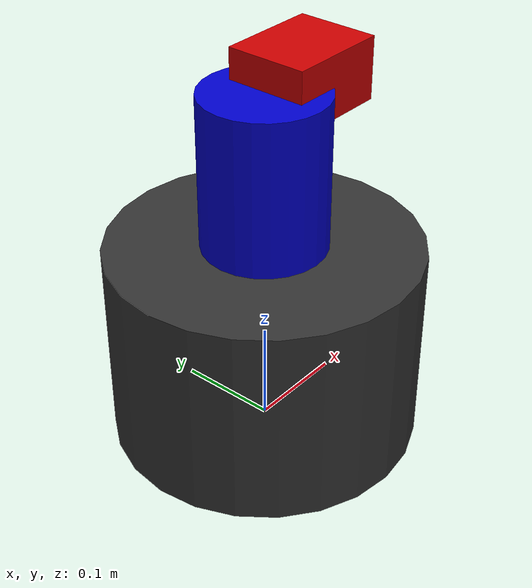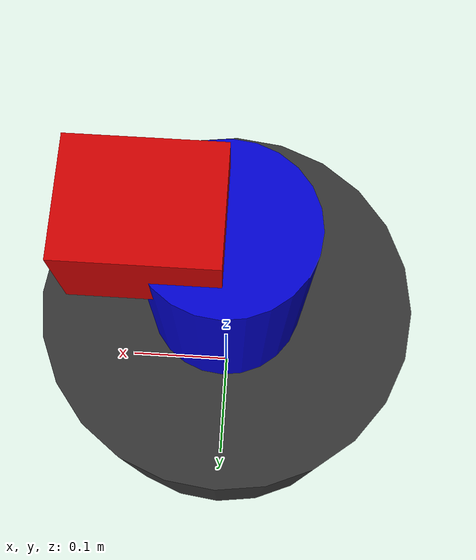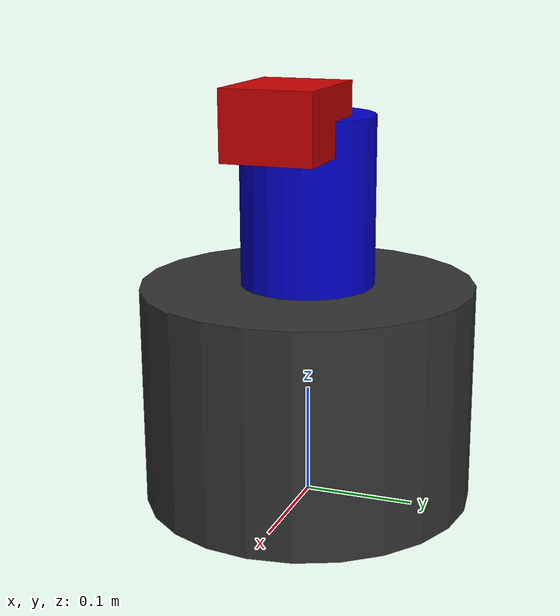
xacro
<?xml version="1.0"?>
<robot xmlns:xacro="http://www.ros.org/wiki/xacro" name="gimbal_taret">

  <xacro:macro name="cylinder_inertia" params="m r h xyz rpy">
    <inertial>
      <origin xyz="${xyz}" rpy="${rpy}"/>
      <mass value="${m}"/>
      <inertia ixx="${(m/12) * (3*r*r + h*h)}" ixy="0" ixz="0"
               iyy="${(m/12) * (3*r*r + h*h)}" iyz="0"
               izz="${(m/2) * (r*r)}"/>
    </inertial>
  </xacro:macro>

  <xacro:macro name="box_inertia" params="m x y z xyz rpy">
    <inertial>
      <origin xyz="${xyz}" rpy="${rpy}"/>
      <mass value="${m}"/>
      <inertia ixx="${(m/12) * (y*y + z*z)}" ixy="0" ixz="0"
               iyy="${(m/12) * (x*x + z*z)}" iyz="0"
               izz="${(m/12) * (x*x + y*y)}"/>
    </inertial>
  </xacro:macro>

  <link name="world"/>
  <joint name="world_joint" type="fixed">
    <parent link="world"/>
    <child link="base_link"/>
    <origin xyz="0 0 0" rpy="0 0 0"/>
  </joint>

  <link name="base_link">
    <visual>
      <origin xyz="0 0 0.1" rpy="0 0 0"/>
      <geometry>
        <cylinder length="0.2" radius="0.15"/>
      </geometry>
      <material name="dark_gray">
        <color rgba="0.2 0.2 0.2 1.0"/>
      </material>
    </visual>
    <collision>
      <origin xyz="0 0 0.1" rpy="0 0 0"/>
      <geometry>
        <cylinder length="0.2" radius="0.15"/>
      </geometry>
    </collision>
    <xacro:cylinder_inertia m="5.0" r="0.15" h="0.2" xyz="0 0 0.1" rpy="0 0 0"/>
  </link>

  <joint name="yaw_joint" type="continuous">
    <parent link="base_link"/>
    <child link="yaw_link"/>
    <origin xyz="0 0 0.2" rpy="0 0 0"/>
    <axis xyz="0 0 1"/>
    <dynamics damping="0.1" friction="0.05"/>
  </joint>

  <link name="yaw_link">
    <visual>
      <origin xyz="0 0 0.075" rpy="0 0 0"/>
      <geometry>
        <cylinder length="0.15" radius="0.06"/>
      </geometry>
      <material name="blue">
        <color rgba="0.0 0.0 0.8 1.0"/>
      </material>
    </visual>
    <collision>
      <origin xyz="0 0 0.075" rpy="0 0 0"/>
      <geometry>
        <cylinder length="0.15" radius="0.06"/>
      </geometry>
    </collision>
    <xacro:cylinder_inertia m="1.5" r="0.06" h="0.15" xyz="0 0 0.075" rpy="0 0 0"/>
  </link>

  <joint name="pitch_joint" type="revolute">
    <parent link="yaw_link"/>
    <child link="camera_link"/>
    <origin xyz="0 0 0.15" rpy="0 0 0"/>
    <axis xyz="0 1 0"/>
    <limit lower="-1.57" upper="1.57" effort="10.0" velocity="3.0"/>
    <dynamics damping="0.1" friction="0.05"/>
  </joint>

  <link name="camera_link">
    <visual>
      <origin xyz="0.05 0 0" rpy="0 0 0"/>
      <geometry>
        <box size="0.1 0.08 0.06"/>
      </geometry>
      <material name="red">
        <color rgba="0.8 0.0 0.0 1.0"/>
      </material>
    </visual>
    <collision>
      <origin xyz="0.05 0 0" rpy="0 0 0"/>
      <geometry>
        <box size="0.1 0.08 0.06"/>
      </geometry>
    </collision>
    <xacro:box_inertia m="0.5" x="0.1" y="0.08" z="0.06" xyz="0.05 0 0" rpy="0 0 0"/>
  </link>

  <gazebo reference="base_link">
    <material>Gazebo/DarkGrey</material>
  </gazebo>
  <gazebo reference="yaw_link">
    <material>Gazebo/Blue</material>
  </gazebo>
  <gazebo reference="camera_link">
    <material>Gazebo/Red</material>
  </gazebo>

  <ros2_control name="GazeboSystem" type="system">
    <hardware>
      <plugin>gazebo_ros2_control/GazeboSystem</plugin>
    </hardware>
    <joint name="yaw_joint">
      <command_interface name="position"/>
      <state_interface name="position"/>
      <state_interface name="velocity"/>
    </joint>
    <joint name="pitch_joint">
      <command_interface name="position"/>
      <state_interface name="position"/>
      <state_interface name="velocity"/>
    </joint>
  </ros2_control>

  <gazebo>
    <plugin filename="libgazebo_ros2_control.so" name="gazebo_ros2_control">
      <parameters>$(find gimbal_description)/config/gimbal_controllers.yaml</parameters>
    </plugin>
  </gazebo>

  <joint name="camera_optical_joint" type="fixed">
    <parent link="camera_link"/>
    <child link="camera_link_optical"/>
    <origin xyz="0.1 0 0" rpy="${-pi/2} 0 ${-pi/2}"/>
  </joint>

  <link name="camera_link_optical"/>

  <joint name="muzzle_joint" type="fixed">
    <parent link="camera_link"/>
    <child link="muzzle_link"/>
    <origin xyz="0.10 0 0" rpy="0 0 0"/>
  </joint>

  <link name="muzzle_link"/>

  <gazebo reference="camera_link">
    <gravity>false</gravity>
    <sensor type="camera" name="gimbal_camera">
      <update_rate>30.0</update_rate>
      <camera name="head">
        <horizontal_fov>1.3962634</horizontal_fov>
        <image>
          <width>640</width>
          <height>480</height>
          <format>R8G8B8</format>
        </image>
        <clip>
          <near>0.02</near>
          <far>300</far>
        </clip>
      </camera>
      <plugin name="camera_controller" filename="libgazebo_ros_camera.so">
        <ros>
          <remapping>~/image_raw:=/camera/image_raw</remapping>
          <remapping>~/camera_info:=/camera/camera_info</remapping>
        </ros>
        <camera_name>camera</camera_name>
        <frame_name>camera_link_optical</frame_name>
      </plugin>
    </sensor>
  </gazebo>
</robot>
